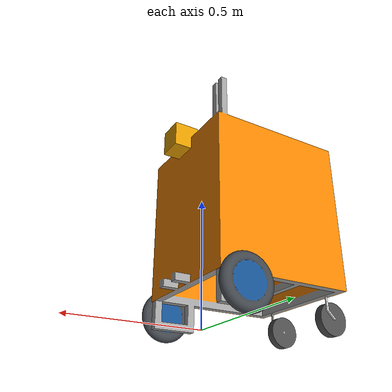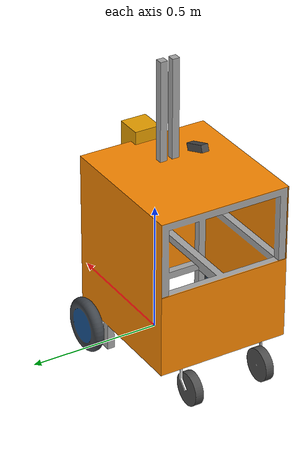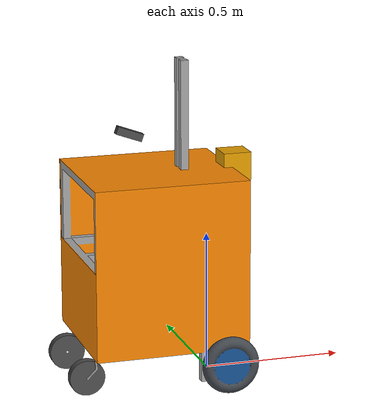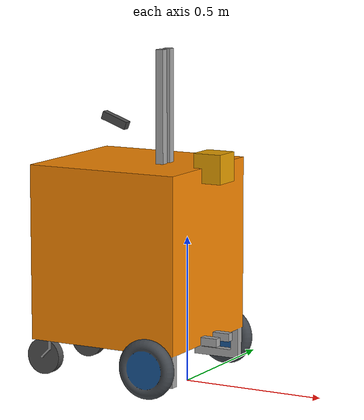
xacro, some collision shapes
<?xml version="1.0"?>
<robot xmlns:xacro="http://www.ros.org/wiki/xacro" name="orange_robot">
  <!--import gazebo reference-->
  <xacro:include filename="$(find orange_description)/xacro/orange_robot_simulation.gazebo"/>
  <!--import 2D LiDAR model-->
  <xacro:include filename="$(find orange_description)/xacro/sensors/hokuyo.xacro"/>
  <xacro:sensor_hokuyo name="hokuyo" parent="base_link" min_angle="-1.22" max_angle="1.22" samples="720">
    <!-- Flush on top of orange chassis, forward -->
    <origin xyz="0.1 0.0 0.645" rpy="0.0 0.0 0.0"/>
  </xacro:sensor_hokuyo>
  <!--import 3D LiDAR model-->
  <!--bringup-->
  <!--simulation-->
  <!--Livox 3D LiDAR disabled - using 2D Hokuyo instead-->
  <!--import imu model-->
  <xacro:include filename="$(find orange_description)/xacro/sensors/imu.xacro"/>
  <xacro:sensor_imu name="imu" parent="base_link" size="0.05 0.05 0.05">
    <origin xyz="-0.253 0.0 0.068" rpy="0.0 0.0 0.0"/>
  </xacro:sensor_imu>
  <!--import OAK-D Pro camera model (front)-->
  <xacro:include filename="$(find orange_description)/xacro/sensors/oak_d_pro.xacro"/>
  <xacro:oak_d_pro name="oak" parent="base_link">
    <!-- Mounted on the front-right pole, pitched down about 20 degrees -->
    <origin xyz="-0.28 0.0 0.78" rpy="0.0 0.349066 0.0"/>
  </xacro:oak_d_pro>

  <!--base footprint-->
  <link name="base_footprint"/>
  <!--base link-->
  <joint name="base_joint" type="fixed">
    <parent link="base_footprint"/>
    <child link="base_link"/>
    <origin xyz="0.0 0.0 0.1015" rpy="0 0 0"/>
  </joint>
  <link name="base_link">
    <visual>
      <origin xyz="0.0775 0.25275 0.6425" rpy="0.0 0.0 0.0"/>
      <geometry>
        <mesh filename="file://$(find orange_description)/meshes/chassis.dae"/>
      </geometry>
    </visual>
    <collision>
      <origin xyz="-0.1995 0.0 0.341" rpy="0.0 0.0 0.0"/>
      <geometry>
        <box size="0.549 0.5055 0.603"/>
      </geometry>
    </collision>
    <inertial>
      <mass value="27.1"/>
      <origin xyz="-0.1995 0.0 0.19" rpy="0.0 0.0 0.0"/>
      <inertia ixx="0.78032248125" ixy="0.0" ixz="0.0" iyy="0.883913925" iyz="0.0" izz="1.25773640625"/>
    </inertial>
  </link>
  <!--caster-->
  <joint name="left_caster_hinge" type="fixed">
    <origin xyz="0.0 0.0 0.0" rpy="0.0 0.0 0.0"/>
    <child link="left_caster_link"/>
    <parent link="base_link"/>
  </joint>
  <joint name="right_caster_hinge" type="fixed">
    <origin xyz="0.0 0.0 0.0" rpy="0.0 0.0 0.0"/>
    <child link="right_caster_link"/>
    <parent link="base_link"/>
  </joint>
  <link name="left_caster_link">
    <visual>
      <origin xyz="-0.4815 0.145 -0.039" rpy="0.0 0.0 0.0"/>
      <geometry>
        <mesh filename="file://$(find orange_description)/meshes/left_caster.dae"/>
      </geometry>
    </visual>
    <collision>
      <origin xyz="-0.4815 0.145 -0.039" rpy="0.0 1.57079632679 1.57079632679"/>
      <geometry>
        <sphere radius="0.0625"/>
      </geometry>
    </collision>
  </link>
  <link name="right_caster_link">
    <visual>
      <origin xyz="-0.4815 -0.145 -0.039" rpy="0.0 0.0 0.0"/>
      <geometry>
        <mesh filename="file://$(find orange_description)/meshes/right_caster.dae"/>
        <sphere radius="0.0625"/>
      </geometry>
    </visual>
    <collision>
      <origin xyz="-0.4815 -0.145 -0.039" rpy="0.0 1.57079632679 1.57079632679"/>
      <geometry>
        <sphere radius="0.0625"/>
      </geometry>
    </collision>
  </link>
  <!--front wheels-->
  <joint type="revolute" name="left_wheel_hinge">
    <origin xyz="0.0 0.2834 0.0" rpy="0.0 0.0 0.0"/>
    <child link="left_wheel">left_wheel</child>
    <parent link="base_link">base_link</parent>
    <axis xyz="0 1 0"/>
    <limit effort="100" velocity="100.0" lower="-5000" upper="5000"/>
  </joint>
  <joint type="revolute" name="right_wheel_hinge">
    <origin xyz="0.0 -0.2834 0.0" rpy="0.0 0.0 0.0"/>
    <child link="right_wheel">right_wheel</child>
    <parent link="base_link">base_link</parent>
    <axis xyz="0 1 0"/>
    <limit effort="100" velocity="100.0" lower="-5000" upper="5000"/>
  </joint>
  <link name="left_wheel">
    <visual name="visual">
      <origin xyz="0.0 0.0 0.0" rpy="0.0 0.0 0.0"/>
      <geometry>
        <mesh filename="file://$(find orange_description)/meshes/front_wheel.dae"/>
      </geometry>
    </visual>
    <collision name="collision">
      <origin xyz="0.0 0.0 0.0" rpy="0.0 1.57079632679 1.57079632679"/>
      <geometry>
        <cylinder length="0.047" radius="0.1015"/>
      </geometry>
    </collision>
    <inertial>
      <mass value="3.4"/>
      <origin xyz="0.0 0.0 0.0" rpy="0.0 1.57079632679 1.57079632679"/>
      <inertia ixx="0.00938279583" ixy="0.0" ixz="0.0" iyy="0.00938279583" iyz="0.0" izz="0.017513825"/>
    </inertial>
  </link>
  <link name="right_wheel">
    <visual name="visual">
      <origin xyz="0.0 0.0 0.0" rpy="0.0 0.0 0.0"/>
      <geometry>
        <mesh filename="file://$(find orange_description)/meshes/front_wheel.dae"/>
      </geometry>
    </visual>
    <collision name="collision">
      <origin xyz="0.0 0.0 0.0" rpy="0.0 1.57079632679 1.57079632679"/>
      <geometry>
        <cylinder length="0.047" radius="0.1015"/>
      </geometry>
    </collision>
    <inertial>
      <mass value="3.4"/>
      <origin xyz="0.0 0.0 0.0" rpy="0.0 1.57079632679 1.57079632679"/>
      <inertia ixx="0.00938279583" ixy="0.0" ixz="0.0" iyy="0.00938279583" iyz="0.0" izz="0.017513825"/>
    </inertial>
  </link>
</robot>

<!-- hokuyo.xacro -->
<robot xmlns:xacro="http://ros.org/wiki/xacro" xmlns:controller="http://playerstage.sourceforge.net/gazebo/xmlschema/#controller" xmlns:interface="http://playerstage.sourceforge.net/gazebo/xmlschema/#interface" name="sensor_hokuyo">
  <xacro:macro name="sensor_hokuyo" params="name parent *origin min_angle max_angle samples">
    <joint name="${name}_joint" type="fixed">
      <xacro:insert_block name="origin"/>
      <axis xyz="0 1 0"/>
      <parent link="${parent}"/>
      <child link="${name}_link"/>
    </joint>
    <link name="${name}_link">
      <visual>
        <origin xyz="0 0 0" rpy="0 0 0"/>
        <geometry>
          <mesh filename="file://$(find orange_description)/meshes/hokuyo.dae"/>
        </geometry>
      </visual>
      <collision>
        <origin xyz="0 0 0" rpy="0 0 0"/>
        <geometry>
          <box size="0.1 0.1 0.1"/>
        </geometry>
      </collision>
      <inertial>
        <mass value="0.0001"/>
        <origin xyz="0 0 0" rpy="0 0 0"/>
        <inertia ixx="0.0001" ixy="0" ixz="0" iyy="0.0001" iyz="0" izz="0.0001"/>
      </inertial>
    </link>
    <gazebo reference="${name}_link">
      <sensor type="ray" name="head_hokuyo_sensor">
        <pose>0 0 0 0 0 0</pose>
        <visualize>false</visualize>
        <update_rate>20</update_rate>
        <ray>
          <scan>
            <horizontal>
              <resolution>1</resolution>
              <samples>${samples}</samples>
              <min_angle>${min_angle}</min_angle>
              <max_angle>${max_angle}</max_angle>
            </horizontal>
          </scan>
          <range>
            <min>0.10</min>
            <max>30.0</max>
            <resolution>0.01</resolution>
          </range>
          <noise>
            <type>gaussian</type>
            <mean>0.0</mean>
            <stddev>0.01</stddev>
          </noise>
        </ray>
        <plugin name="gazebo_ros_hokuyo_controller" filename="libgazebo_ros_ray_sensor.so">
          <ros>
            <remapping>~/out:=hokuyo_scan</remapping>
          </ros>
          <output_type>sensor_msgs/LaserScan</output_type>
          <frame_name>${name}_link</frame_name>
        </plugin>
      </sensor>
    </gazebo>
  </xacro:macro>
</robot>

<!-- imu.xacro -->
<robot xmlns:xacro="http://ros.org/wiki/xacro" xmlns:controller="http://playerstage.sourceforge.net/gazebo/xmlschema/#controller" xmlns:interface="http://playerstage.sourceforge.net/gazebo/xmlschema/#interface" name="sensor_imu">
  <xacro:macro name="sensor_imu" params="name parent *origin size">
    <joint name="${name}_joint" type="fixed">
      <xacro:insert_block name="origin"/>
      <axis xyz="1 0 0"/>
      <parent link="${parent}"/>
      <child link="${name}_link"/>
    </joint>
    <link name="${name}_link">
      <visual>
        <origin rpy="0 0 0" xyz="0 0 0"/>
        <geometry>
          <box size="${size}"/>
        </geometry>
      </visual>
      <collision>
        <origin rpy="0 0 0" xyz="0 0 0"/>
        <geometry>
          <box size="${size}"/>
        </geometry>
      </collision>
      <inertial>
        <mass value="0.001"/>
        <origin rpy="0 0 0" xyz="0 0 0"/>
        <inertia ixx="0.0001" ixy="0" ixz="0" iyy="0.000001" iyz="0" izz="0.0001"/>
      </inertial>
    </link>
    <gazebo reference="${name}_link">
      <sensor type="imu" name="imu">
        <always_on>true</always_on>
        <plugin name="gazebo_ros_imu_controller" filename="libgazebo_ros_imu_sensor.so">
          <ros>
            <remapping>~/out:=imu</remapping>
          </ros>
          <frame_name>${name}_link</frame_name>
          <gaussian_noise>0.001</gaussian_noise>
          <xyzOffset>0 0 0</xyzOffset>
          <rpyOffset>0 0 0</rpyOffset>
        </plugin>
      </sensor>
    </gazebo>
  </xacro:macro>
</robot>

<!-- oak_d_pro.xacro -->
<robot xmlns:xacro="http://www.ros.org/wiki/xacro">
  <!--
  OAK-D Pro Camera Sensor
  Emulates Luxonis OAK-D Pro with RGB camera and stereo depth
  -->

  <xacro:macro name="oak_d_pro" params="name parent *origin">

    <!-- OAK-D Pro Base Link -->
    <joint name="${name}_joint" type="fixed">
      <xacro:insert_block name="origin"/>
      <parent link="${parent}"/>
      <child link="${name}_link"/>
    </joint>

    <link name="${name}_link">
      <visual>
        <origin xyz="0 0 0" rpy="0 0 0"/>
        <geometry>
          <box size="0.097 0.0275 0.0275"/>
        </geometry>
        <material name="oak_gcameraray">
          <color rgba="0.3 0.3 0.3 1.0"/>
        </material>
      </visual>
      <collision>
        <origin xyz="0 0 0" rpy="0 0 0"/>
        <geometry>
          <box size="0.097 0.0275 0.0275"/>
        </geometry>
      </collision>
      <inertial>
        <mass value="0.06"/>
        <origin xyz="0 0 0" rpy="0 0 0"/>
        <inertia ixx="0.00001" ixy="0.0" ixz="0.0" iyy="0.00001" iyz="0.0" izz="0.00001"/>
      </inertial>
    </link>

    <!-- RGB Camera Link (Center) -->
    <joint name="${name}_rgb_joint" type="fixed">
      <origin xyz="0.0 0.0 0.0" rpy="0 0 0"/>
      <parent link="${name}_link"/>
      <child link="${name}_rgb_camera_frame"/>
    </joint>

    <link name="${name}_rgb_camera_frame"/>

    <!-- RGB Camera Optical Frame -->
    <joint name="${name}_rgb_optical_joint" type="fixed">
      <origin xyz="0 0 0" rpy="${-pi/2} 0 ${-pi/2}"/>
      <parent link="${name}_rgb_camera_frame"/>
      <child link="${name}_rgb_camera_optical_frame"/>
    </joint>

    <link name="${name}_rgb_camera_optical_frame"/>

    <!-- Left Stereo Camera -->
    <joint name="${name}_left_joint" type="fixed">
      <origin xyz="0.0 0.0375 0.0" rpy="0 0 0"/>
      <parent link="${name}_link"/>
      <child link="${name}_left_camera_frame"/>
    </joint>

    <link name="${name}_left_camera_frame"/>

    <joint name="${name}_left_optical_joint" type="fixed">
      <origin xyz="0 0 0" rpy="${-pi/2} 0 ${-pi/2}"/>
      <parent link="${name}_left_camera_frame"/>
      <child link="${name}_left_camera_optical_frame"/>
    </joint>

    <link name="${name}_left_camera_optical_frame"/>

    <!-- Right Stereo Camera -->
    <joint name="${name}_right_joint" type="fixed">
      <origin xyz="0.0 -0.0375 0.0" rpy="0 0 0"/>
      <parent link="${name}_link"/>
      <child link="${name}_right_camera_frame"/>
    </joint>

    <link name="${name}_right_camera_frame"/>

    <joint name="${name}_right_optical_joint" type="fixed">
      <origin xyz="0 0 0" rpy="${-pi/2} 0 ${-pi/2}"/>
      <parent link="${name}_right_camera_frame"/>
      <child link="${name}_right_camera_optical_frame"/>
    </joint>

    <link name="${name}_right_camera_optical_frame"/>

    <!-- Gazebo RGB Camera Plugin -->
    <gazebo reference="${name}_rgb_camera_frame">
      <sensor type="camera" name="${name}_rgb_camera">
        <update_rate>30.0</update_rate>
        <camera name="${name}_rgb">
          <horizontal_fov>1.2217</horizontal_fov>
          <image>
            <!-- Reduced resolution for smoother performance (was 1920x1080) -->
            <width>640</width>
            <height>480</height>
            <format>R8G8B8</format>
          </image>
          <clip>
            <near>0.1</near>
            <far>100</far>
          </clip>
          <noise>
            <type>gaussian</type>
            <mean>0.0</mean>
            <stddev>0.007</stddev>
          </noise>
        </camera>
        <plugin name="${name}_rgb_camera_controller" filename="libgazebo_ros_camera.so">
          <frame_name>${name}_rgb_camera_optical_frame</frame_name>
          <camera_name>oak/rgb</camera_name>
          <image_topic_name>image_raw</image_topic_name>
          <camera_info_topic_name>camera_info</camera_info_topic_name>
          <hack_baseline>0.07</hack_baseline>
        </plugin>
      </sensor>
    </gazebo>

    <!-- Gazebo Depth Camera Plugin (Stereo as RGB-D) -->
    <gazebo reference="${name}_left_camera_frame">
      <sensor type="depth" name="${name}_depth_camera">
        <update_rate>30.0</update_rate>
        <camera name="${name}_depth">
          <horizontal_fov>1.2217</horizontal_fov>
          <image>
            <width>640</width>
            <height>400</height>
            <format>R8G8B8</format>
          </image>
          <clip>
            <near>0.2</near>
            <far>20.0</far>
          </clip>
          <noise>
            <type>gaussian</type>
            <mean>0.0</mean>
            <stddev>0.01</stddev>
          </noise>
        </camera>
        <plugin name="${name}_depth_camera_controller" filename="libgazebo_ros_camera.so">
          <frame_name>${name}_left_camera_optical_frame</frame_name>
          <camera_name>oak/stereo</camera_name>
          <image_topic_name>image_raw</image_topic_name>
          <camera_info_topic_name>camera_info</camera_info_topic_name>
          <depth_image_topic_name>depth/image_raw</depth_image_topic_name>
          <depth_image_camera_info_topic_name>depth/camera_info</depth_image_camera_info_topic_name>
          <point_cloud_topic_name>points</point_cloud_topic_name>
          <point_cloud_cutoff>0.2</point_cloud_cutoff>
          <point_cloud_cutoff_max>20.0</point_cloud_cutoff_max>
        </plugin>
      </sensor>
    </gazebo>

  </xacro:macro>
</robot>
